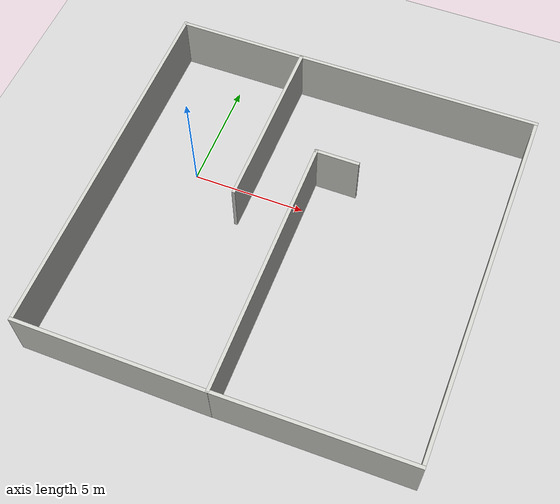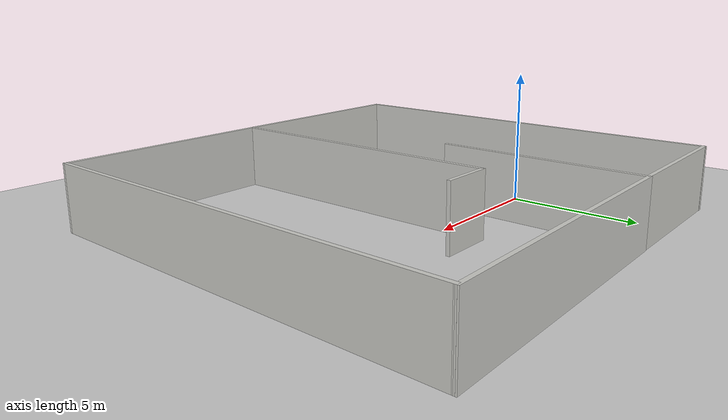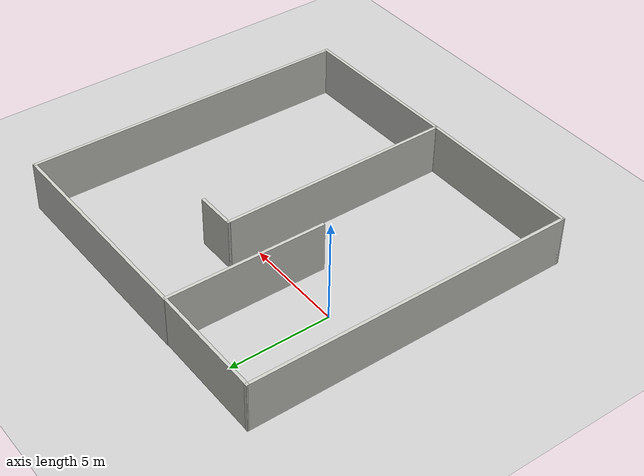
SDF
<sdf version="1.6">
 <world name="default">
  <light name="sun" type="directional">
   <pose>0 0 10 0 -0 0</pose>
   <diffuse>0.8 0.8 0.8 1</diffuse>
   <specular>0.2 0.2 0.2 1</specular>
   <attenuation>
    <range>1000</range>
    <constant>0.9</constant>
    <linear>0.01</linear>
    <quadratic>0.001</quadratic>
   </attenuation>
   <direction>-0.5 0.1 -0.9</direction>
  </light>
  <model name="ground_plane">
   <static>1</static>
   <link name="link">
    <collision name="collision">
     <geometry><plane><normal>0 0 1</normal><size>100 100</size></plane></geometry>
     <surface>
      <contact><collide_bitmask>65535</collide_bitmask></contact>
      <friction><ode><mu>100</mu><mu2>50</mu2></ode></friction>
     </surface>
    </collision>
    <visual name="visual">
     <cast_shadows>0</cast_shadows>
     <geometry><plane><normal>0 0 1</normal><size>100 100</size></plane></geometry>
     <material>
      <script><uri>file://media/materials/scripts/gazebo.material</uri><name>Gazebo/Grey</name></script>
     </material>
    </visual>
   </link>
  </model>
  <gravity>0 0 -9.8</gravity>
  <magnetic_field>6e-06 2.3e-05 -4.2e-05</magnetic_field>
  <atmosphere type="adiabatic"/>
  <physics name="default_physics" default="0" type="ode">
   <max_step_size>0.001</max_step_size>
   <real_time_factor>1</real_time_factor>
   <real_time_update_rate>1000</real_time_update_rate>
  </physics>
  <scene><ambient>0.4 0.4 0.4 1</ambient><background>0.7 0.7 0.7 1</background><shadows>1</shadows></scene>
  <audio><device>default</device></audio>
  <spherical_coordinates>
   <surface_model>EARTH_WGS84</surface_model>
   <latitude_deg>0</latitude_deg>
   <longitude_deg>0</longitude_deg>
   <elevation>0</elevation>
   <heading_deg>0</heading_deg>
  </spherical_coordinates>
  <model name="world">
   <model name="world">
    <pose>2.28972 -0.642491 -0.333333 0 -0 1.57195</pose>
    <link name="Wall_32">
     <collision name="Wall_32_Collision">
      <geometry><box><size>7.87393 0.15 2.5</size></box></geometry>
      <pose>0 0 1.25 0 -0 0</pose>
     </collision>
     <visual name="Wall_32_Visual">
      <pose>0 0 1.25 0 -0 0</pose>
      <geometry><box><size>7.87393 0.15 2.5</size></box></geometry>
      <material>
       <script><uri>file://media/materials/scripts/gazebo.material</uri><name>Gazebo/CeilingTiled</name></script>
       <ambient>1 1 1 1</ambient>
      </material>
      <meta><layer>0</layer></meta>
     </visual>
     <pose>4.14305 5.37764 0 0 -0 -0.005822</pose>
    </link>
    <link name="Wall_33">
     <collision name="Wall_33_Collision">
      <geometry><box><size>10.9051 0.15 2.5</size></box></geometry>
      <pose>0 0 1.25 0 -0 0</pose>
     </collision>
     <visual name="Wall_33_Visual">
      <pose>0 0 1.25 0 -0 0</pose>
      <geometry><box><size>10.9051 0.15 2.5</size></box></geometry>
      <material>
       <script><uri>file://media/materials/scripts/gazebo.material</uri><name>Gazebo/CeilingTiled</name></script>
       <ambient>1 1 1 1</ambient>
      </material>
      <meta><layer>0</layer></meta>
     </visual>
     <pose>8.08827 -0.02233 0 0 -0 -1.56514</pose>
    </link>
    <link name="Wall_34">
     <collision name="Wall_34_Collision">
      <geometry><box><size>16.1775 0.15 2.5</size></box></geometry>
      <pose>0 0 1.25 0 -0 0</pose>
     </collision>
     <visual name="Wall_34_Visual">
      <pose>0 0 1.25 0 -0 0</pose>
      <geometry><box><size>16.1775 0.15 2.5</size></box></geometry>
      <material>
       <script><uri>file://media/materials/scripts/gazebo.material</uri><name>Gazebo/CeilingTiled</name></script>
       <ambient>1 1 1 1</ambient>
      </material>
      <meta><layer>0</layer></meta>
     </visual>
     <pose>0.052439 -5.32047 0 0 -0 3.13169</pose>
    </link>
    <link name="Wall_36">
     <collision name="Wall_36_Collision">
      <geometry><box><size>8.31806 0.15 2.5</size></box></geometry>
      <pose>0 0 1.25 0 -0 0</pose>
     </collision>
     <visual name="Wall_36_Visual">
      <pose>0 0 1.25 0 -0 0</pose>
      <geometry><box><size>8.31806 0.15 2.5</size></box></geometry>
      <material>
       <script><uri>file://media/materials/scripts/gazebo.material</uri><name>Gazebo/CeilingTiled</name></script>
       <ambient>1 1 1 1</ambient>
      </material>
      <meta><layer>0</layer></meta>
     </visual>
     <pose>-8.06598 -1.15742 0 0 -0 1.58357</pose>
    </link>
    <link name="Wall_38">
     <collision name="Wall_38_Collision">
      <geometry><box><size>11.5877 0.15 2.5</size></box></geometry>
      <pose>0 0 1.25 0 -0 0</pose>
     </collision>
     <visual name="Wall_38_Visual">
      <pose>0 0 1.25 0 -0 0</pose>
      <geometry><box><size>11.5877 0.15 2.5</size></box></geometry>
      <material>
       <script><uri>file://media/materials/scripts/gazebo.material</uri><name>Gazebo/CeilingTiled</name></script>
       <ambient>1 1 1 1</ambient>
      </material>
      <meta><layer>0</layer></meta>
     </visual>
     <pose>-2.34642 2.93461 0 0 -0 0.001457</pose>
    </link>
    <link name="Wall_40">
     <collision name="Wall_40_Collision">
      <geometry><box><size>2 0.15 2.5</size></box></geometry>
      <pose>0 0 1.25 0 -0 0</pose>
     </collision>
     <visual name="Wall_40_Visual">
      <pose>0 0 1.25 0 -0 0</pose>
      <geometry><box><size>2 0.15 2.5</size></box></geometry>
      <material>
       <script><uri>file://media/materials/scripts/gazebo.material</uri><name>Gazebo/CeilingTiled</name></script>
       <ambient>1 1 1 1</ambient>
      </material>
      <meta><layer>0</layer></meta>
     </visual>
     <pose>3.40721 2.01794 0 0 -0 -1.5708</pose>
    </link>
    <static>1</static>
   </model>
   <static>0</static>
   <pose>5.70252 -1.22118 0.333333 0 -0 0</pose>
  </model>
  <model name="world_0">
   <pose>0.97807 -1.90591 0 0 -0 0</pose>
   <link name="Wall_10">
    <collision name="Wall_10_Collision">
     <geometry><box><size>5.75 0.15 2.5</size></box></geometry>
     <pose>0 0 1.25 0 -0 0</pose>
    </collision>
    <visual name="Wall_10_Visual">
     <pose>0 0 1.25 0 -0 0</pose>
     <geometry><box><size>5.75 0.15 2.5</size></box></geometry>
     <material>
      <script><uri>file://media/materials/scripts/gazebo.material</uri><name>Gazebo/CeilingTiled</name></script>
      <ambient>1 1 1 1</ambient>
     </material>
     <meta><layer>0</layer></meta>
    </visual>
    <pose>-1.24752 8.07556 0 0 -0 0</pose>
   </link>
   <link name="Wall_12">
    <collision name="Wall_12_Collision">
     <geometry><box><size>16.2661 0.15 2.5</size></box></geometry>
     <pose>0 0 1.25 0 -0 0</pose>
    </collision>
    <visual name="Wall_12_Visual">
     <pose>0 0 1.25 0 -0 0</pose>
     <geometry><box><size>16.2661 0.15 2.5</size></box></geometry>
     <material>
      <script><uri>file://media/materials/scripts/gazebo.material</uri><name>Gazebo/CeilingTiled</name></script>
      <ambient>1 1 1 1</ambient>
     </material>
     <meta><layer>0</layer></meta>
    </visual>
    <pose>-4.04876 0.030757 0 0 -0 -1.57095</pose>
   </link>
   <link name="Wall_13">
    <collision name="Wall_13_Collision">
     <geometry><box><size>8.25 0.15 2.5</size></box></geometry>
     <pose>0 0 1.25 0 -0 0</pose>
    </collision>
    <visual name="Wall_13_Visual">
     <pose>0 0 1.25 0 -0 0</pose>
     <geometry><box><size>8.25 0.15 2.5</size></box></geometry>
     <material>
      <script><uri>file://media/materials/scripts/gazebo.material</uri><name>Gazebo/CeilingTiled</name></script>
      <ambient>1 1 1 1</ambient>
     </material>
     <meta><layer>0</layer></meta>
    </visual>
    <pose>6e-06 -8.0888 0 0 -0 0</pose>
   </link>
   <static>1</static>
  </model>
 </world>
</sdf>
